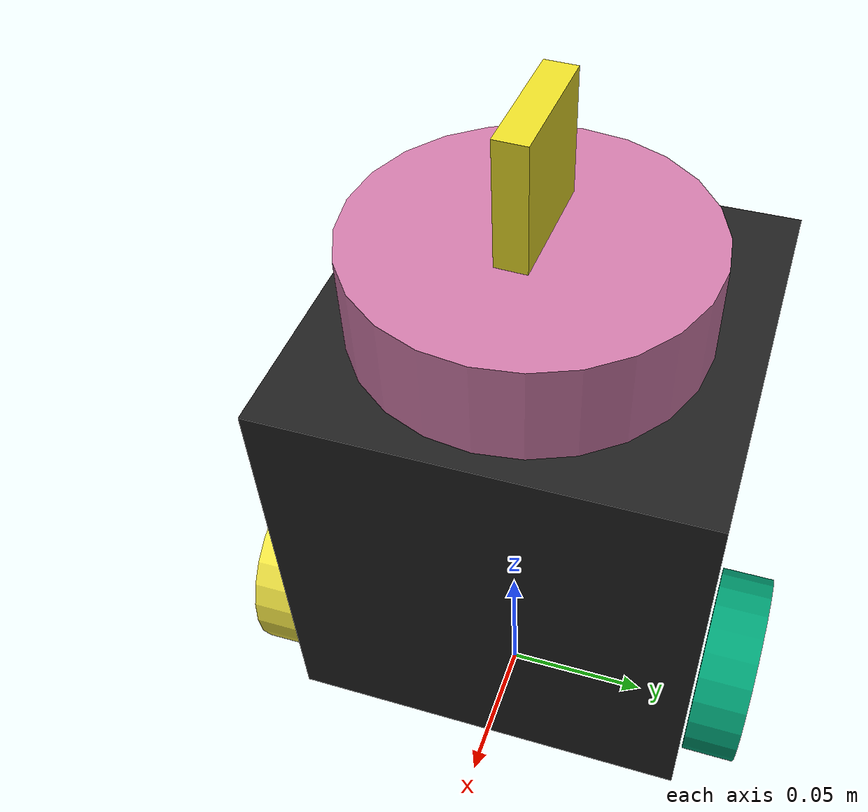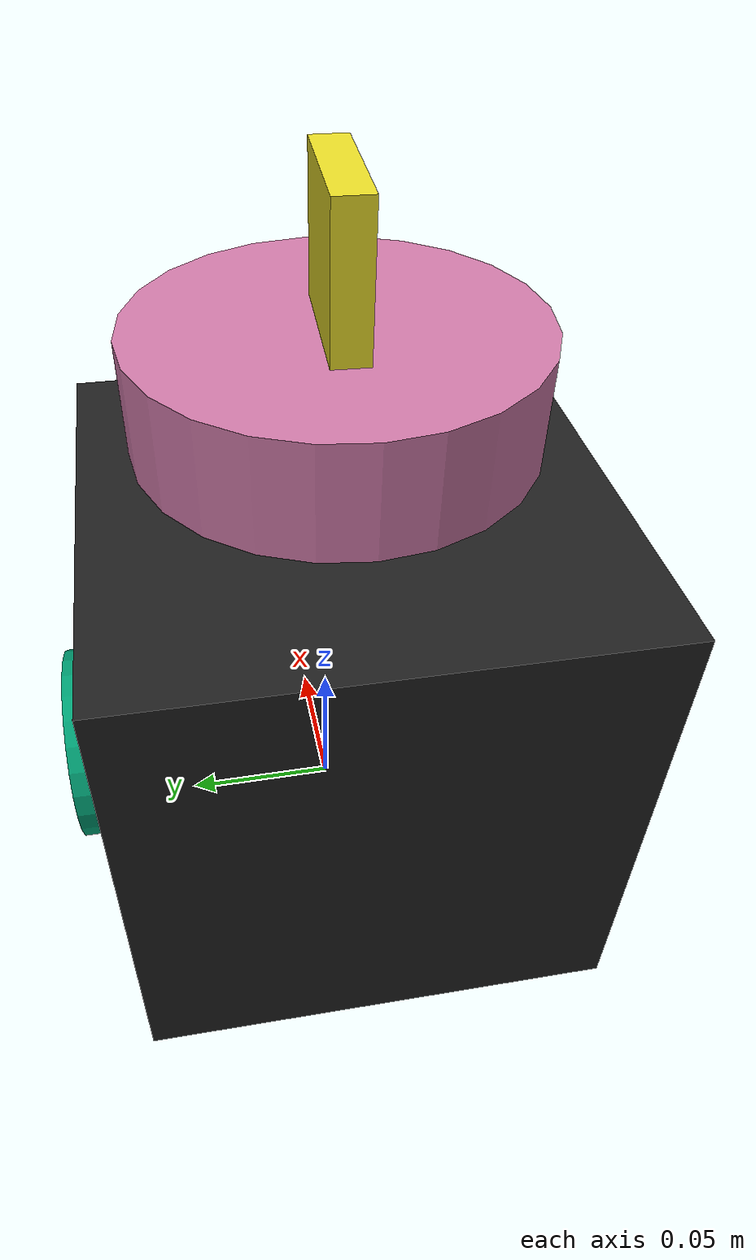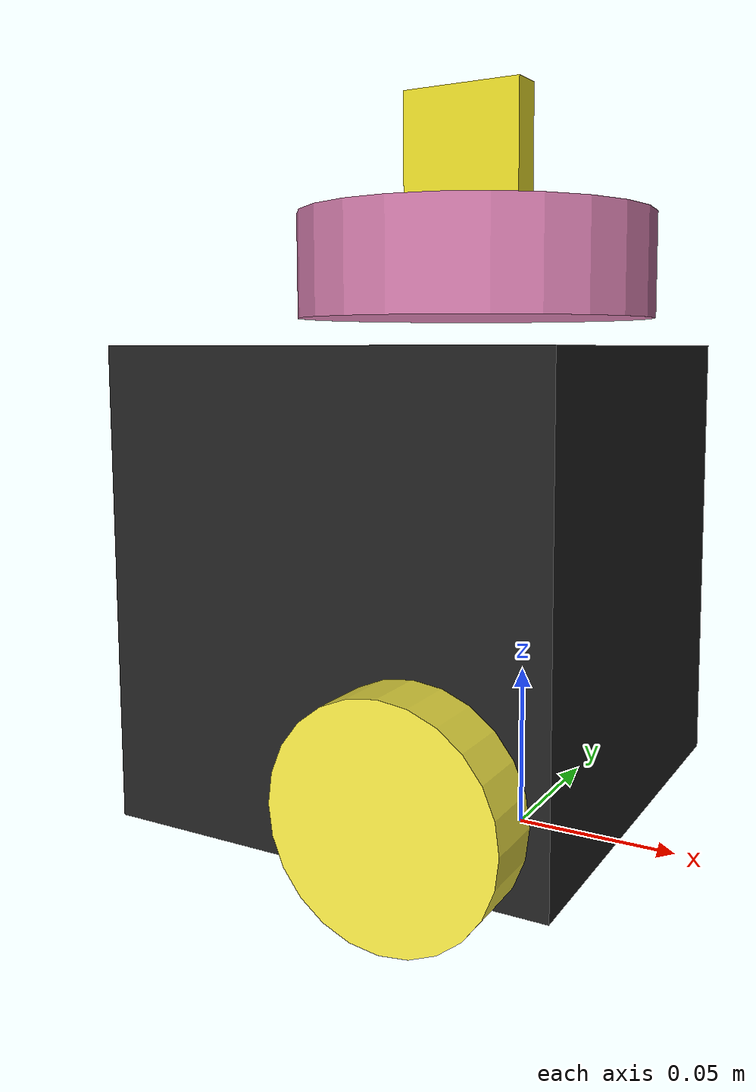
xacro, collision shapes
<?xml version="1.0" ?>
<robot name="turtlebot3_burger" xmlns:xi="http://www.w3.org/2001/XInclude"
    xmlns:gazebo="http://playerstage.sourceforge.net/gazebo/xmlschema/#gz"
    xmlns:model="http://playerstage.sourceforge.net/gazebo/xmlschema/#model"
    xmlns:sensor="http://playerstage.sourceforge.net/gazebo/xmlschema/#sensor"
    xmlns:body="http://playerstage.sourceforge.net/gazebo/xmlschema/#body"
    xmlns:geom="http://playerstage.sourceforge.net/gazebo/xmlschema/#geom"
    xmlns:joint="http://playerstage.sourceforge.net/gazebo/xmlschema/#joint"
    xmlns:controller="http://playerstage.sourceforge.net/gazebo/xmlschema/#controller"
    xmlns:interface="http://playerstage.sourceforge.net/gazebo/xmlschema/#interface"
    xmlns:rendering="http://playerstage.sourceforge.net/gazebo/xmlschema/#rendering"
    xmlns:renderable="http://playerstage.sourceforge.net/gazebo/xmlschema/#renderable"
    xmlns:physics="http://playerstage.sourceforge.net/gazebo/xmlschema/#physics"
    xmlns:xacro="http://ros.org/wiki/xacro">
  <xacro:include filename="$(find turtlebot3_description)/urdf/common_properties.xacro"/>
  <xacro:include filename="$(find turtlebot3_description)/urdf/turtlebot3_burger_for_autorace_2020.gazebo.xacro"/>
  <xacro:include filename="$(find mycar_description)/sensors/camera_gazebo.xacro"/>

  <link name="base_footprint"/>

  <joint name="base_joint" type="fixed">
    <parent link="base_footprint"/>
    <child link="base_link"/>
    <origin xyz="0.0 0.0 0.010" rpy="0 0 0"/>
  </joint>

  <link name="base_link">
    <visual>
      <origin xyz="-0.032 0 0.0" rpy="0 0 0"/>
      <geometry>
        <mesh filename="package://turtlebot3_description/meshes/bases/burger_base.stl" scale="0.001 0.001 0.001"/>
      </geometry>
      <material name="light_black"/>
    </visual>

    <collision>
      <origin xyz="-0.032 0 0.070" rpy="0 0 0"/>
      <geometry>
        <box size="0.140 0.140 0.143"/>
      </geometry>
    </collision>

    <inertial>
      <origin xyz="-0.016 0 0" rpy="0 0 0"/>
      <mass value="8.2573504"/>
      <inertia ixx="2.2124416e-02" ixy="-1.2294101e-04" ixz="3.4938785e-04"
               iyy="2.1193702e-02" iyz="-5.0120904e-05"
               izz="2.0064271e-02" />
    </inertial>
  </link>

  <joint name="wheel_left_joint" type="continuous">
    <parent link="base_link"/>
    <child link="wheel_left_link"/>
    <origin xyz="0.0 0.08 0.023" rpy="-1.5707 0 0"/>
    <axis xyz="0 0 1"/>
  </joint>

  <link name="wheel_left_link">
    <visual>
      <origin xyz="0 0 0" rpy="1.5707 0 0"/>
      <geometry>
        <mesh filename="package://turtlebot3_description/meshes/wheels/left_tire.stl" scale="0.001 0.001 0.001"/>
      </geometry>
      <material name="dark"/>
    </visual>

    <collision>
      <origin xyz="0 0 0" rpy="0 0 0"/>
      <geometry>
        <cylinder length="0.018" radius="0.033"/>
      </geometry>
    </collision>

    <inertial>
      <origin xyz="0 0 0" />
      <mass value="2.8498940" />
      <inertia ixx="1.1175580e-03" ixy="-4.2369783e-08" ixz="-5.9381719e-07"
               iyy="1.1192413e-03" iyz="-1.4400107e-08"
               izz="2.0712558e-03" />
      </inertial>
  </link>

  <joint name="wheel_right_joint" type="continuous">
    <parent link="base_link"/>
    <child link="wheel_right_link"/>
    <origin xyz="0.0 -0.080 0.023" rpy="-1.5707 0 0"/>
    <axis xyz="0 0 1"/>
  </joint>

  <link name="wheel_right_link">
    <visual>
      <origin xyz="0 0 0" rpy="1.5707 0 0"/>
      <geometry>
        <mesh filename="package://turtlebot3_description/meshes/wheels/right_tire.stl" scale="0.001 0.001 0.001"/>
      </geometry>
      <material name="dark"/>
    </visual>

    <collision>
      <origin xyz="0 0 0" rpy="0 0 0"/>
      <geometry>
        <cylinder length="0.018" radius="0.033"/>
      </geometry>
    </collision>

    <inertial>
      <origin xyz="0 0 0" />
      <mass value="2.8498940" />
      <inertia ixx="1.1175580e-03" ixy="-4.2369783e-08" ixz="-5.9381719e-07"
               iyy="1.1192413e-03" iyz="-1.4400107e-08"
               izz="2.0712558e-03" />
      </inertial>
  </link>

  <joint name="caster_back_joint" type="fixed">
    <parent link="base_link"/>
    <child link="caster_back_link"/>
    <origin xyz="-0.081 0 -0.004" rpy="-1.5707 0 0"/>
  </joint>

  <link name="caster_back_link">
    <collision>
      <origin xyz="0 0.000 0" rpy="0 0 0"/>
      <geometry>
        <box size="0.030 0.009 0.020"/>
      </geometry>
    </collision>

    <inertial>
      <origin xyz="0 0 0" />
      <mass value="0.000001" />
      <inertia ixx="0.000001" ixy="0.0" ixz="0.0"
               iyy="0.000001" iyz="0.0"
               izz="0.000001" />
    </inertial>
  </link>

  <joint name="imu_joint" type="fixed">
    <parent link="base_link"/>
    <child link="imu_link"/>
    <origin xyz="-0.032 0 0.068" rpy="0 0 0"/>
  </joint>

  <link name="imu_link"/>

  <joint name="scan_joint" type="fixed">
    <parent link="base_link"/>
    <child link="base_scan"/>
    <origin xyz="-0.032 0 0.172" rpy="0 0 0"/>
  </joint>

  <link name="base_scan">
    <visual>
      <origin xyz="0 0 0.0" rpy="0 0 0"/>
      <geometry>
        <mesh filename="package://turtlebot3_description/meshes/sensors/lds.stl" scale="0.001 0.001 0.001"/>
      </geometry>
      <material name="dark"/>
    </visual>

    <collision>
      <origin xyz="0.015 0 -0.0065" rpy="0 0 0"/>
      <geometry>
        <cylinder length="0.0315" radius="0.055"/>
      </geometry>
    </collision>

    <inertial>
      <mass value="0.114" />
      <origin xyz="0 0 0" />
      <inertia ixx="0.001" ixy="0.0" ixz="0.0"
               iyy="0.001" iyz="0.0"
               izz="0.001" />
    </inertial>
  </link>

  <xacro:property name="camera_offset_x" value="-0.02"/>
  <xacro:property name="camera_offset_y" value="0"/>
  <xacro:property name="camera_offset_z" value="0.2"/>

  <joint name="camera_joint" type="fixed">
      <origin xyz="${camera_offset_x} ${camera_offset_y} ${camera_offset_z}" rpy="0 0 1.53" />
      <parent link="base_link" />
      <child link="camera_link" />
  </joint>

  <xacro:usb_camera prefix="camera"/>

</robot>

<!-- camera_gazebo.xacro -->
<robot xmlns:xacro="http://www.ros.org/wiki/xacro" name="camera">

    <xacro:macro name="usb_camera" params="prefix:=camera">
        <!-- Create laser reference frame -->
        <link name="${prefix}_link">
            <inertial>
                <mass value="0.1" />
                <origin xyz="0 0 0" />
                <inertia ixx="0.01" ixy="0.0" ixz="0.0"
                         iyy="0.01" iyz="0.0"
                         izz="0.01" />
            </inertial>

            <visual>
                <origin xyz=" 0 0 0 " rpy="0 0 0" />
                <geometry>
                    <box size="0.01 0.04 0.04" />
                </geometry>
                <material name="yellow"/>
            </visual>

            <collision>
                <origin xyz="0.0 0.0 0.0" rpy="0 0 0" />
                <geometry>
                    <box size="0.01 0.04 0.04" />
                </geometry>
            </collision>
        </link>
        <gazebo reference="${prefix}_link">
            <material>Gazebo/Yellow</material>
        </gazebo>

        <gazebo reference="${prefix}_link">
            <sensor type="camera" name="camera_node">
                <update_rate>30.0</update_rate>
                <camera name="head">
                    <horizontal_fov>1.085595</horizontal_fov>
                    <image>
                        <width>320</width>
                        <height>240</height>
                        <format>R8G8B8</format>
                    </image>
                    <clip>
                        <near>0.03</near>
                        <far>100</far>
                    </clip>
                    <noise>
                        <type>gaussian</type>
                        <mean>0.0</mean>
                        <stddev>0.007</stddev>
                    </noise>
                </camera>
                <plugin name="gazebo_camera" filename="libgazebo_ros_camera.so">
                    <alwaysOn>true</alwaysOn>
                    <updateRate>30.0</updateRate>
                    <cameraName>/camera</cameraName>
                    <imageTopicName>image</imageTopicName>
                    <cameraInfoTopicName>camera_info</cameraInfoTopicName>
                    <frameName>camera_link</frameName>
                    <hackBaseline>0.07</hackBaseline>
                    <distortionK1>0.0</distortionK1>
                    <distortionK2>0.0</distortionK2>
                    <distortionK3>0.0</distortionK3>
                    <distortionT1>0.0</distortionT1>
                    <distortionT2>0.0</distortionT2>
                </plugin>
            </sensor>
        </gazebo>

    </xacro:macro>
</robot>
